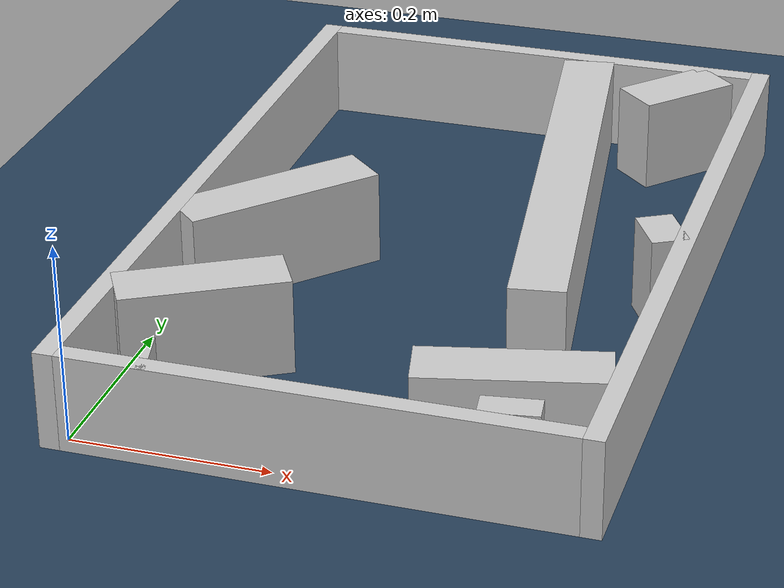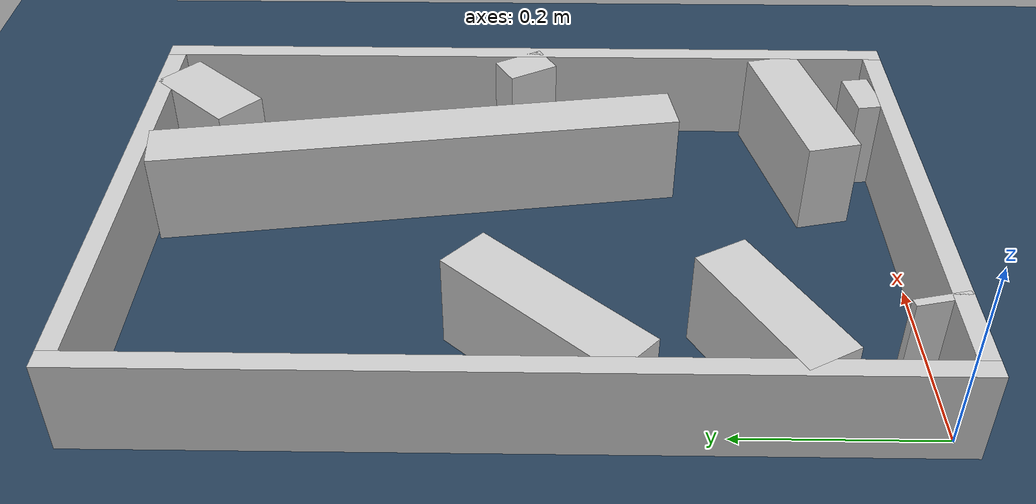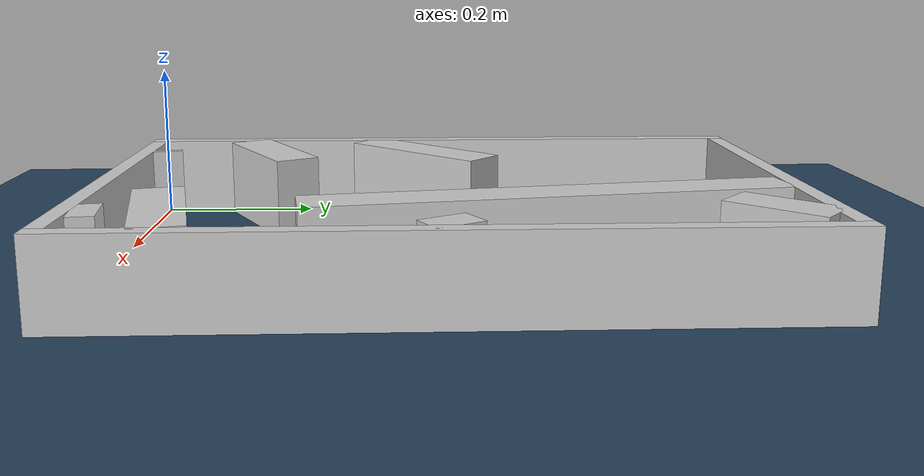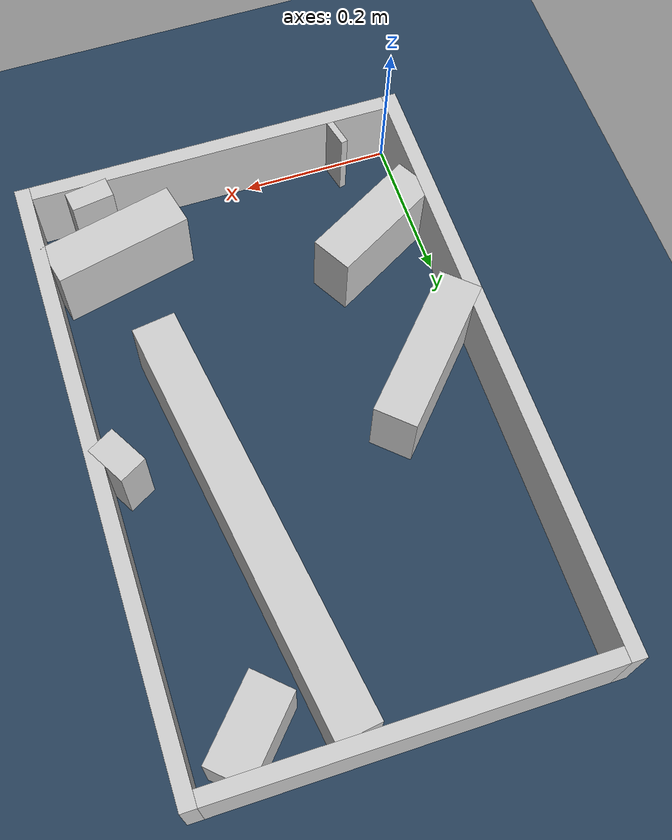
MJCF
<?xml version="1.0" ?>
<mujoco model="generated_real_template">
  <compiler angle="degree"/>
  <option timestep="0.002" integrator="implicitfast" iterations="100" cone="elliptic"/>
  <default>
    <geom density="1"/>
  </default>
  <asset>
    <texture builtin="gradient" height="3072" rgb1="0.3 0.5 0.7" rgb2="0 0 0" type="skybox" width="512"/>
    <texture builtin="checker" height="300" mark="edge" markrgb="0.8 0.8 0.8" name="groundplane" rgb1="0.2 0.3 0.4" rgb2="0.1 0.2 0.3" type="2d" width="300"/>
    <material name="groundplane" reflectance="0.2" texrepeat="5 5" texture="groundplane" texuniform="true"/>
  </asset>
  <worldbody>
    <light dir="0 0 -1" directional="true" pos="0 0 1.5"/>
    <geom name="floor" type="plane" condim="4" friction="0.5 0.005 0.001" material="groundplane" size="0 0 0.05"/>
    <body name="walls">
      <geom name="wall_boundary_left" type="box" condim="4" friction="1.0 0.005 0.0001" rgba="0.8 0.8 0.8 1" pos="-0.010000 0.387500 0.050000" euler="0 0 0.000000" size="0.010000 0.407500 0.050000"/>
      <geom name="wall_boundary_right" type="box" condim="4" friction="1.0 0.005 0.0001" rgba="0.8 0.8 0.8 1" pos="0.500000 0.387500 0.050000" euler="0 0 0.000000" size="0.010000 0.407500 0.050000"/>
      <geom name="wall_boundary_bottom" type="box" condim="4" friction="1.0 0.005 0.0001" rgba="0.8 0.8 0.8 1" pos="0.245000 -0.010000 0.050000" euler="0 0 0.000000" size="0.245000 0.010000 0.050000"/>
      <geom name="wall_boundary_top" type="box" condim="4" friction="1.0 0.005 0.0001" rgba="0.8 0.8 0.8 1" pos="0.245000 0.785000 0.050000" euler="0 0 0.000000" size="0.245000 0.010000 0.050000"/>
      <geom name="wall_inner_1_1" type="box" condim="4" friction="1.0 0.005 0.0001" rgba="0.8 0.8 0.8 1" pos="0.417359 0.014272 0.050000" euler="0 0 98.392082" size="0.014426 0.028500 0.050000"/>
      <geom name="wall_inner_1_2" type="box" condim="4" friction="1.0 0.005 0.0001" rgba="0.8 0.8 0.8 1" pos="0.345761 0.499597 0.050000" euler="0 0 98.392082" size="0.278384 0.028500 0.050000"/>
      <geom name="wall_inner_2_1" type="box" condim="4" friction="1.0 0.005 0.0001" rgba="0.8 0.8 0.8 1" pos="0.078322 0.008784 0.050000" euler="0 0 13.055045" size="0.004514 0.028500 0.050000"/>
      <geom name="wall_inner_2_2" type="box" condim="4" friction="1.0 0.005 0.0001" rgba="0.8 0.8 0.8 1" pos="0.400823 0.083566 0.050000" euler="0 0 13.055045" size="0.091543 0.028500 0.050000"/>
      <geom name="wall_inner_3_1" type="box" condim="4" friction="1.0 0.005 0.0001" rgba="0.8 0.8 0.8 1" pos="0.473045 0.384469 0.050000" euler="0 0 -150.584597" size="0.019464 0.028500 0.050000"/>
      <geom name="wall_inner_3_2" type="box" condim="4" friction="1.0 0.005 0.0001" rgba="0.8 0.8 0.8 1" pos="0.072811 0.158807 0.050000" euler="0 0 -150.584597" size="0.083587 0.028500 0.050000"/>
      <geom name="wall_inner_4_1" type="box" condim="4" friction="1.0 0.005 0.0001" rgba="0.8 0.8 0.8 1" pos="0.415115 0.733092 0.050000" euler="0 0 -132.678128" size="0.057004 0.028500 0.050000"/>
      <geom name="wall_inner_4_2" type="box" condim="4" friction="1.0 0.005 0.0001" rgba="0.8 0.8 0.8 1" pos="0.073067 0.362134 0.050000" euler="0 0 -132.678128" size="0.106381 0.028500 0.050000"/>
    </body>
  </worldbody>
</mujoco>
